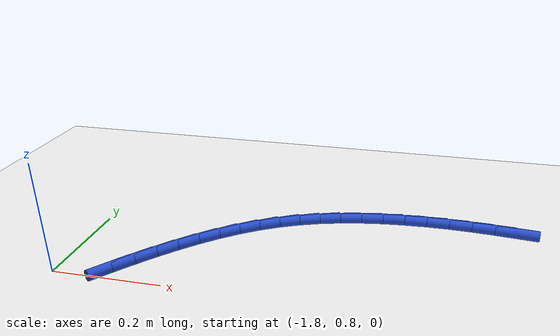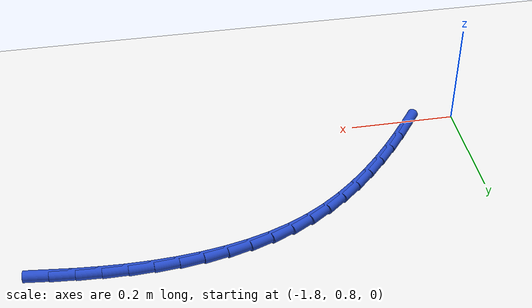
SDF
<sdf version="1.6">
 <world name="default">
  <model name="ground_plane">
   <static>1</static>
   <link name="link">
    <collision name="collision">
     <geometry><plane><normal>0 0 1</normal><size>100 100</size></plane></geometry>
     <surface><friction><ode><mu>100</mu><mu2>50</mu2></ode></friction></surface>
    </collision>
    <visual name="visual">
     <cast_shadows>0</cast_shadows>
     <geometry><plane><normal>0 0 1</normal><size>100 100</size></plane></geometry>
     <material>
      <script><uri>file://media/materials/scripts/gazebo.material</uri><name>Gazebo/WhiteGlow</name></script>
     </material>
    </visual>
   </link>
  </model>
  <model name="line">
   <link name="link_39">
    <pose>-1.0150629891487095 1.1001226355964326 0.01 0 1.57 -0.10517898835809106</pose>
    <collision name="collision">
     <geometry><cylinder><radius>0.01</radius><length>0.08</length></cylinder></geometry>
    </collision>
    <visual name="visual">
     <material>
      <script><name>Gazebo/Blue</name><uri>file://media/materials/scripts/gazebo.material</uri></script>
     </material>
     <geometry><cylinder><radius>0.01</radius><length>0.08</length></cylinder></geometry>
    </visual>
   </link>
   <link name="link_40">
    <pose>-1.0576666466667994 1.1046202425440002 0.01 0 1.57 -0.07295500872507307</pose>
    <collision name="collision">
     <geometry><cylinder><radius>0.01</radius><length>0.08</length></cylinder></geometry>
    </collision>
    <visual name="visual">
     <material>
      <script><name>Gazebo/Blue</name><uri>file://media/materials/scripts/gazebo.material</uri></script>
     </material>
     <geometry><cylinder><radius>0.01</radius><length>0.08</length></cylinder></geometry>
    </visual>
   </link>
   <link name="link_41">
    <pose>-1.1004455917793654 1.1077467296668368 0.01 0 1.57 -0.03677361657779231</pose>
    <collision name="collision">
     <geometry><cylinder><radius>0.01</radius><length>0.08</length></cylinder></geometry>
    </collision>
    <visual name="visual">
     <material>
      <script><name>Gazebo/Blue</name><uri>file://media/materials/scripts/gazebo.material</uri></script>
     </material>
     <geometry><cylinder><radius>0.01</radius><length>0.08</length></cylinder></geometry>
    </visual>
   </link>
   <link name="link_42">
    <pose>-1.1432148780544125 1.1093202203421304 0.01 0 1.57 0.0038054353172262538</pose>
    <collision name="collision">
     <geometry><cylinder><radius>0.01</radius><length>0.08</length></cylinder></geometry>
    </collision>
    <visual name="visual">
     <material>
      <script><name>Gazebo/Blue</name><uri>file://media/materials/scripts/gazebo.material</uri></script>
     </material>
     <geometry><cylinder><radius>0.01</radius><length>0.08</length></cylinder></geometry>
    </visual>
   </link>
   <link name="link_43">
    <pose>-1.185789521653157 1.109158204507692 0.01 0 1.57 0.049255815760416696</pose>
    <collision name="collision">
     <geometry><cylinder><radius>0.01</radius><length>0.08</length></cylinder></geometry>
    </collision>
    <visual name="visual">
     <material>
      <script><name>Gazebo/Blue</name><uri>file://media/materials/scripts/gazebo.material</uri></script>
     </material>
     <geometry><cylinder><radius>0.01</radius><length>0.08</length></cylinder></geometry>
    </visual>
   </link>
   <link name="link_44">
    <pose>-1.227984538736816 1.1070781721013325 0.01 0 1.57 0.10008527572492634</pose>
    <collision name="collision">
     <geometry><cylinder><radius>0.01</radius><length>0.08</length></cylinder></geometry>
    </collision>
    <visual name="visual">
     <material>
      <script><name>Gazebo/Blue</name><uri>file://media/materials/scripts/gazebo.material</uri></script>
     </material>
     <geometry><cylinder><radius>0.01</radius><length>0.08</length></cylinder></geometry>
    </visual>
   </link>
   <link name="link_45">
    <pose>-1.2696149454666046 1.1028976130608628 0.01 0 1.57 0.15681023764077648</pose>
    <collision name="collision">
     <geometry><cylinder><radius>0.01</radius><length>0.08</length></cylinder></geometry>
    </collision>
    <visual name="visual">
     <material>
      <script><name>Gazebo/Blue</name><uri>file://media/materials/scripts/gazebo.material</uri></script>
     </material>
     <geometry><cylinder><radius>0.01</radius><length>0.08</length></cylinder></geometry>
    </visual>
   </link>
   <link name="link_46">
    <pose>-1.3104957580037417 1.0964340173240945 0.01 0 1.57 0.21991389838990455</pose>
    <collision name="collision">
     <geometry><cylinder><radius>0.01</radius><length>0.08</length></cylinder></geometry>
    </collision>
    <visual name="visual">
     <material>
      <script><name>Gazebo/Blue</name><uri>file://media/materials/scripts/gazebo.material</uri></script>
     </material>
     <geometry><cylinder><radius>0.01</radius><length>0.08</length></cylinder></geometry>
    </visual>
   </link>
   <link name="link_47">
    <pose>-1.3504419925094417 1.0875048748288376 0.01 0 1.57 0.28978297204122794</pose>
    <collision name="collision">
     <geometry><cylinder><radius>0.01</radius><length>0.08</length></cylinder></geometry>
    </collision>
    <visual name="visual">
     <material>
      <script><name>Gazebo/Blue</name><uri>file://media/materials/scripts/gazebo.material</uri></script>
     </material>
     <geometry><cylinder><radius>0.01</radius><length>0.08</length></cylinder></geometry>
    </visual>
   </link>
   <link name="link_48">
    <pose>-1.3892686651449218 1.0759276755129035 0.01 0 1.57 0.3666206731034478</pose>
    <collision name="collision">
     <geometry><cylinder><radius>0.01</radius><length>0.08</length></cylinder></geometry>
    </collision>
    <visual name="visual">
     <material>
      <script><name>Gazebo/Blue</name><uri>file://media/materials/scripts/gazebo.material</uri></script>
     </material>
     <geometry><cylinder><radius>0.01</radius><length>0.08</length></cylinder></geometry>
    </visual>
   </link>
   <link name="link_49">
    <pose>-1.4267907920713987 1.0615199093141034 0.01 0 1.57 0.4503375389906583</pose>
    <collision name="collision">
     <geometry><cylinder><radius>0.01</radius><length>0.08</length></cylinder></geometry>
    </collision>
    <visual name="visual">
     <material>
      <script><name>Gazebo/Blue</name><uri>file://media/materials/scripts/gazebo.material</uri></script>
     </material>
     <geometry><cylinder><radius>0.01</radius><length>0.08</length></cylinder></geometry>
    </visual>
   </link>
   <link name="link_50">
    <pose>-1.4628234399773667 1.0440991533385167 0.01 0 1.57 0.5371897602432852</pose>
    <collision name="collision">
     <geometry><cylinder><radius>0.01</radius><length>0.08</length></cylinder></geometry>
    </collision>
    <visual name="visual">
     <material>
      <script><name>Gazebo/Blue</name><uri>file://media/materials/scripts/gazebo.material</uri></script>
     </material>
     <geometry><cylinder><radius>0.01</radius><length>0.08</length></cylinder></geometry>
    </visual>
   </link>
   <link name="link_51">
    <pose>-1.4972471070402358 1.023595865294979 0.01 0 1.57 0.6167905847550336</pose>
    <collision name="collision">
     <geometry><cylinder><radius>0.01</radius><length>0.08</length></cylinder></geometry>
    </collision>
    <visual name="visual">
     <material>
      <script><name>Gazebo/Blue</name><uri>file://media/materials/scripts/gazebo.material</uri></script>
     </material>
     <geometry><cylinder><radius>0.01</radius><length>0.08</length></cylinder></geometry>
    </visual>
   </link>
   <link name="link_52">
    <pose>-1.530136202344044 1.000275032648325 0.01 0 1.57 0.6870203333192387</pose>
    <collision name="collision">
     <geometry><cylinder><radius>0.01</radius><length>0.08</length></cylinder></geometry>
    </collision>
    <visual name="visual">
     <material>
      <script><name>Gazebo/Blue</name><uri>file://media/materials/scripts/gazebo.material</uri></script>
     </material>
     <geometry><cylinder><radius>0.01</radius><length>0.08</length></cylinder></geometry>
    </visual>
   </link>
   <link name="link_53">
    <pose>-1.5616008880451686 0.9744633230791814 0.01 0 1.57 0.7480053871471516</pose>
    <collision name="collision">
     <geometry><cylinder><radius>0.01</radius><length>0.08</length></cylinder></geometry>
    </collision>
    <visual name="visual">
     <material>
      <script><name>Gazebo/Blue</name><uri>file://media/materials/scripts/gazebo.material</uri></script>
     </material>
     <geometry><cylinder><radius>0.01</radius><length>0.08</length></cylinder></geometry>
    </visual>
   </link>
   <link name="link_54">
    <pose>-1.591751326299986 0.9464874042681749 0.01 0 1.57 0.8001539024800867</pose>
    <collision name="collision">
     <geometry><cylinder><radius>0.01</radius><length>0.08</length></cylinder></geometry>
    </collision>
    <visual name="visual">
     <material>
      <script><name>Gazebo/Blue</name><uri>file://media/materials/scripts/gazebo.material</uri></script>
     </material>
     <geometry><cylinder><radius>0.01</radius><length>0.08</length></cylinder></geometry>
    </visual>
   </link>
   <link name="link_55">
    <pose>-1.6206976792648724 0.9166739438959319 0.01 0 1.57 0.8440010465876947</pose>
    <collision name="collision">
     <geometry><cylinder><radius>0.01</radius><length>0.08</length></cylinder></geometry>
    </collision>
    <visual name="visual">
     <material>
      <script><name>Gazebo/Blue</name><uri>file://media/materials/scripts/gazebo.material</uri></script>
     </material>
     <geometry><cylinder><radius>0.01</radius><length>0.08</length></cylinder></geometry>
    </visual>
   </link>
   <link name="link_56">
    <pose>-1.648550109096205 0.8853496096430784 0.01 0 1.57 0.880097831313926</pose>
    <collision name="collision">
     <geometry><cylinder><radius>0.01</radius><length>0.08</length></cylinder></geometry>
    </collision>
    <visual name="visual">
     <material>
      <script><name>Gazebo/Blue</name><uri>file://media/materials/scripts/gazebo.material</uri></script>
     </material>
     <geometry><cylinder><radius>0.01</radius><length>0.08</length></cylinder></geometry>
    </visual>
   </link>
   <link name="link_57">
    <pose>-1.675418777950359 0.8528410691902413 0.01 0 1.57 0.9089380846560258</pose>
    <collision name="collision">
     <geometry><cylinder><radius>0.01</radius><length>0.08</length></cylinder></geometry>
    </collision>
    <visual name="visual">
     <material>
      <script><name>Gazebo/Blue</name><uri>file://media/materials/scripts/gazebo.material</uri></script>
     </material>
     <geometry><cylinder><radius>0.01</radius><length>0.08</length></cylinder></geometry>
    </visual>
   </link>
   <link name="link_58">
    <pose>-1.7014138479837129 0.8194749902180467 0.01 0 1.57 0.9309127059710687</pose>
    <collision name="collision">
     <geometry><cylinder><radius>0.01</radius><length>0.08</length></cylinder></geometry>
    </collision>
    <visual name="visual">
     <material>
      <script><name>Gazebo/Blue</name><uri>file://media/materials/scripts/gazebo.material</uri></script>
     </material>
     <geometry><cylinder><radius>0.01</radius><length>0.08</length></cylinder></geometry>
    </visual>
   </link>
  </model>
 </world>
</sdf>
